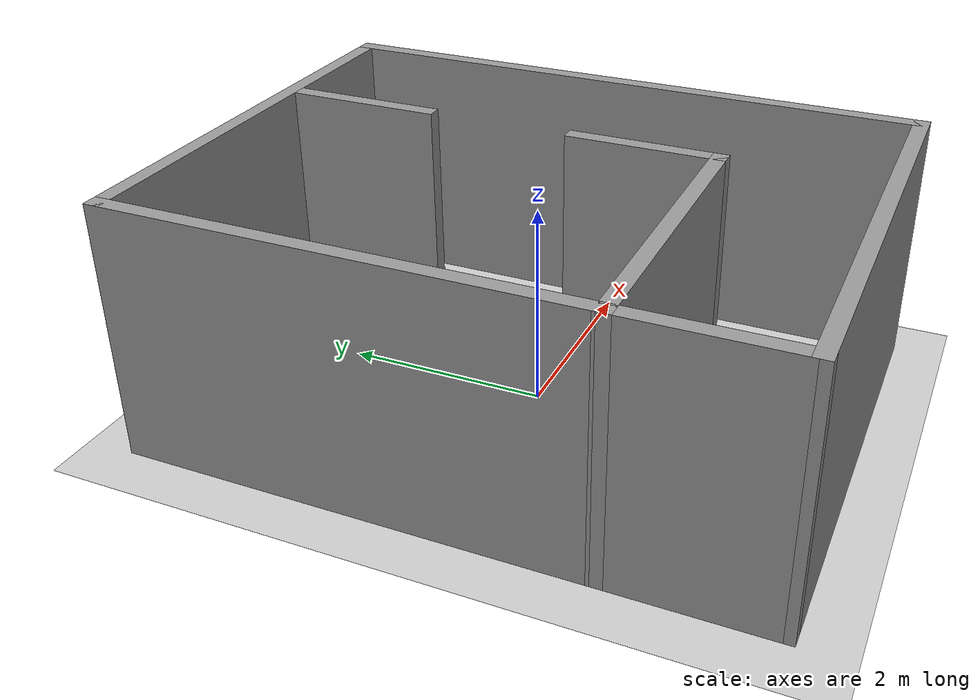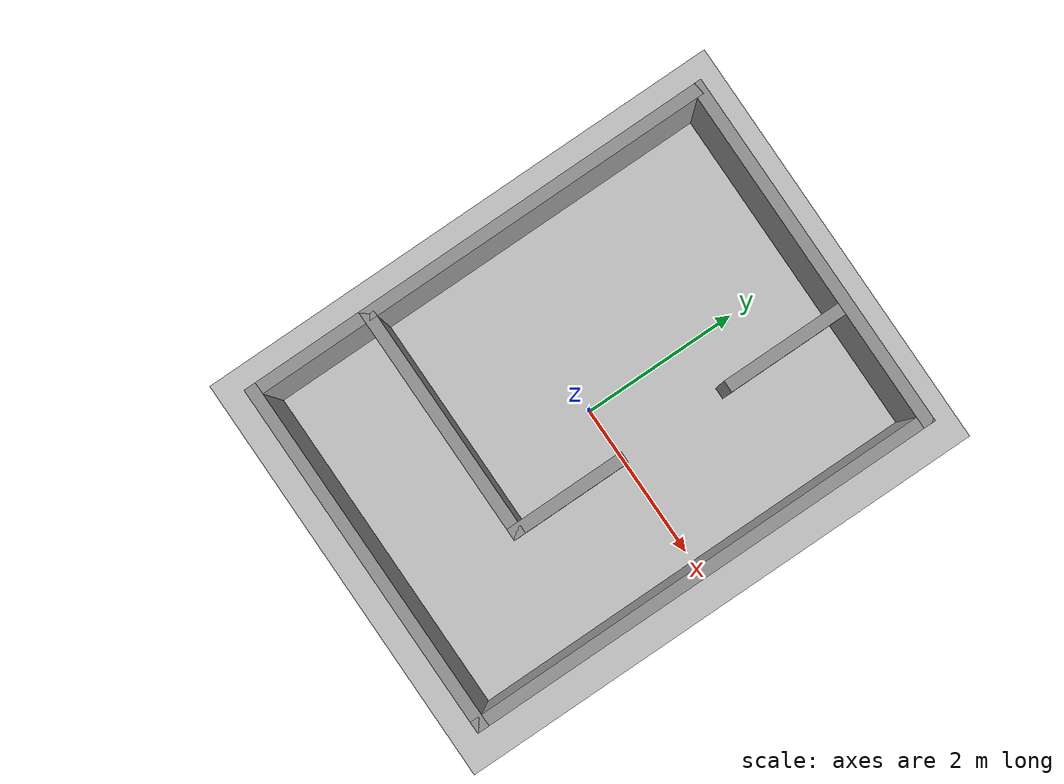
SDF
<sdf version="1.6">
 <world name="__default__">
  <gravity>0 0 -9.8</gravity>
  <magnetic_field>6e-06 2.3e-05 -4.2e-05</magnetic_field>
  <atmosphere type="adiabatic"/>
  <physics name="default_physics" default="0" type="ode">
   <max_step_size>0.001</max_step_size>
   <real_time_factor>1</real_time_factor>
   <real_time_update_rate>1000</real_time_update_rate>
  </physics>
  <scene><ambient>0.4 0.4 0.4 1</ambient><background>0.7 0.7 0.7 1</background><shadows>1</shadows></scene>
  <audio><device>default</device></audio>
  <spherical_coordinates>
   <surface_model>EARTH_WGS84</surface_model>
   <latitude_deg>0</latitude_deg>
   <longitude_deg>0</longitude_deg>
   <elevation>0</elevation>
   <heading_deg>0</heading_deg>
  </spherical_coordinates>
  <model name="Map">
   <link name="Wall_18">
    <collision name="Wall_18_Collision">
     <geometry><box><size>6.096 0.15 2.5</size></box></geometry>
     <pose>0 0 1.25 0 -0 0</pose>
    </collision>
    <visual name="Wall_18_Visual">
     <pose>0 0 1.25 0 -0 0</pose>
     <geometry><box><size>6.096 0.15 2.5</size></box></geometry>
     <material>
      <script><uri>file://media/materials/scripts/gazebo.material</uri><name>Gazebo/Grey</name></script>
      <ambient>1 1 1 1</ambient>
     </material>
     <meta><layer>0</layer></meta>
    </visual>
    <pose>2.21116 -0.00018 0 0 -0 -1.5708</pose>
   </link>
   <link name="Wall_27">
    <collision name="Wall_27_Collision">
     <geometry><box><size>4.572 0.15 2.5</size></box></geometry>
     <pose>0 0 1.25 0 -0 0</pose>
    </collision>
    <visual name="Wall_27_Visual">
     <pose>0 0 1.25 0 -0 0</pose>
     <geometry><box><size>4.572 0.15 2.5</size></box></geometry>
     <material>
      <script><uri>file://media/materials/scripts/gazebo.material</uri><name>Gazebo/Grey</name></script>
      <ambient>1 1 1 1</ambient>
     </material>
     <meta><layer>0</layer></meta>
    </visual>
    <pose>7e-06 2.973 0 0 -0 3.14151</pose>
   </link>
   <link name="Wall_29">
    <collision name="Wall_29_Collision">
     <geometry><box><size>4.572 0.15 2.5</size></box></geometry>
     <pose>0 0 1.25 0 -0 0</pose>
    </collision>
    <visual name="Wall_29_Visual">
     <pose>0 0 1.25 0 -0 0</pose>
     <geometry><box><size>4.572 0.15 2.5</size></box></geometry>
     <material>
      <script><uri>file://media/materials/scripts/gazebo.material</uri><name>Gazebo/Grey</name></script>
      <ambient>1 1 1 1</ambient>
     </material>
     <meta><layer>0</layer></meta>
    </visual>
    <pose>0.000156 -2.97318 0 0 -0 3.14159</pose>
   </link>
   <link name="Wall_42">
    <collision name="Wall_42_Collision">
     <geometry><box><size>4.572 0.15 2.5</size></box></geometry>
     <pose>0 0 1.25 0 -0 0</pose>
    </collision>
    <visual name="Wall_42_Visual">
     <pose>0 0 1.25 0 -0 0</pose>
     <geometry><box><size>4.572 0.15 2.5</size></box></geometry>
     <material>
      <script><uri>file://media/materials/scripts/gazebo.material</uri><name>Gazebo/Grey</name></script>
      <ambient>1 1 1 1</ambient>
     </material>
     <meta><layer>0</layer></meta>
    </visual>
    <pose>-2.21114 0.762188 0 0 -0 -1.5708</pose>
   </link>
   <link name="Wall_44">
    <collision name="Wall_44_Collision">
     <geometry><box><size>3.048 0.15 2.5</size></box></geometry>
     <pose>0 0 1.25 0 -0 0</pose>
    </collision>
    <visual name="Wall_44_Visual">
     <pose>0 0 1.25 0 -0 0</pose>
     <geometry><box><size>3.048 0.15 2.5</size></box></geometry>
     <material>
      <script><uri>file://media/materials/scripts/gazebo.material</uri><name>Gazebo/Grey</name></script>
      <ambient>1 1 1 1</ambient>
     </material>
     <meta><layer>0</layer></meta>
    </visual>
    <pose>-0.762141 -1.44881 0 0 -0 0</pose>
   </link>
   <link name="Wall_46">
    <collision name="Wall_46_Collision">
     <geometry><box><size>1.524 0.15 2.5</size></box></geometry>
     <pose>0 0 1.25 0 -0 0</pose>
    </collision>
    <visual name="Wall_46_Visual">
     <pose>0 0 1.25 0 -0 0</pose>
     <geometry><box><size>1.524 0.15 2.5</size></box></geometry>
     <material>
      <script><uri>file://media/materials/scripts/gazebo.material</uri><name>Gazebo/Grey</name></script>
      <ambient>1 1 1 1</ambient>
     </material>
     <meta><layer>0</layer></meta>
    </visual>
    <pose>0.686859 -0.761811 0 0 -0 1.5708</pose>
   </link>
   <link name="Wall_56">
    <collision name="Wall_56_Collision">
     <geometry><box><size>1.524 0.15 2.5</size></box></geometry>
     <pose>0 0 1.25 0 -0 0</pose>
    </collision>
    <visual name="Wall_56_Visual">
     <pose>0 0 1.25 0 -0 0</pose>
     <geometry><box><size>1.524 0.15 2.5</size></box></geometry>
     <material>
      <script><uri>file://media/materials/scripts/gazebo.material</uri><name>Gazebo/Grey</name></script>
      <ambient>1 1 1 1</ambient>
     </material>
     <meta><layer>0</layer></meta>
    </visual>
    <pose>0.686859 2.13619 0 0 -0 1.5708</pose>
   </link>
   <link name="Wall_58">
    <collision name="Wall_58_Collision">
     <geometry><box><size>1.67437 0.15 2.5</size></box></geometry>
     <pose>0 0 1.25 0 -0 0</pose>
    </collision>
    <visual name="Wall_58_Visual">
     <pose>0 0 1.25 0 -0 0</pose>
     <geometry><box><size>1.67437 0.15 2.5</size></box></geometry>
     <material>
      <script><uri>file://media/materials/scripts/gazebo.material</uri><name>Gazebo/Grey</name></script>
      <ambient>1 1 1 1</ambient>
     </material>
     <meta><layer>0</layer></meta>
    </visual>
    <pose>-2.21099 -2.211 0 0 -0 -1.5706</pose>
   </link>
   <static>1</static>
  </model>
  <model name="ground_plane">
   <static>1</static>
   <link name="link">
    <collision name="collision">
     <geometry><plane><normal>0 0 1</normal><size>100 100</size></plane></geometry>
     <surface>
      <contact><collide_bitmask>65535</collide_bitmask></contact>
      <friction><ode><mu>100</mu><mu2>50</mu2></ode></friction>
     </surface>
    </collision>
    <visual name="visual">
     <cast_shadows>0</cast_shadows>
     <geometry><plane><normal>0 0 1</normal><size>100 100</size></plane></geometry>
     <material>
      <script><uri>file://media/materials/scripts/gazebo.material</uri><name>Gazebo/Grey</name></script>
     </material>
    </visual>
   </link>
   <pose>1.68932 -4.144 0 0 -0 0</pose>
  </model>
 </world>
</sdf>
